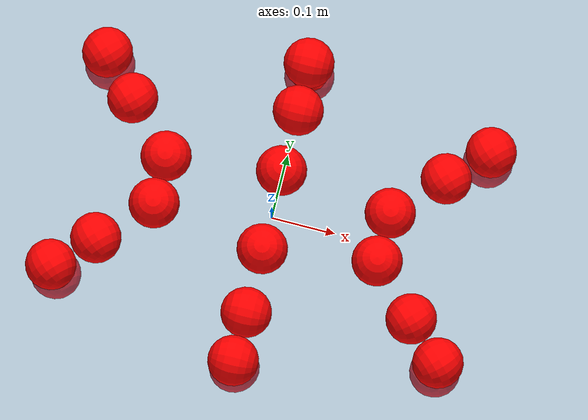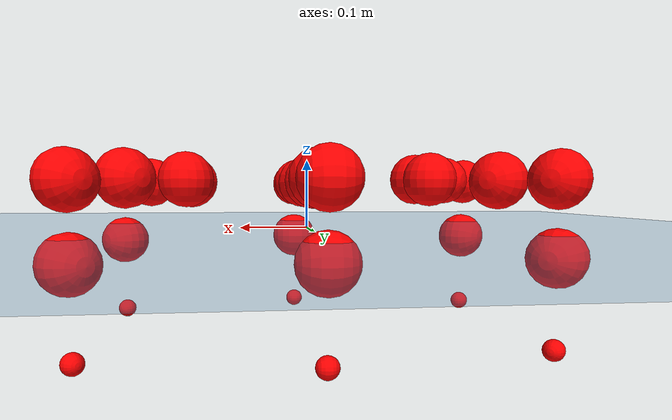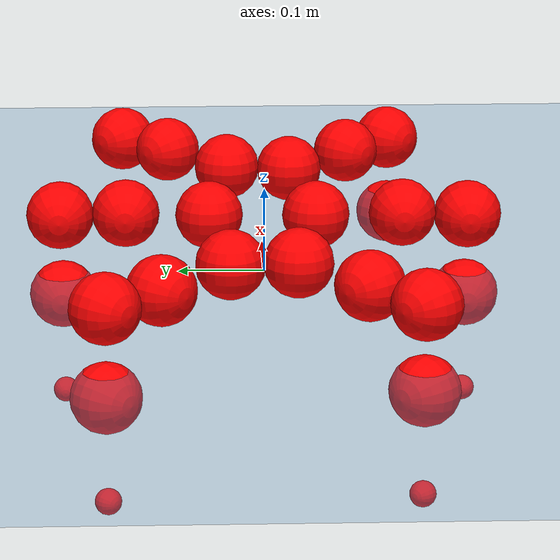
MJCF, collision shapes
<mujoco model="Golem">
  <compiler angle="radian" assetdir="assets" balanceinertia="true" inertiafromgeom="false"/>

  <option timestep="0.005" density="1.2" viscosity="2e-05"/>

  <size nkey="1"/>

  <visual>
    <quality shadowsize="8192"/>
    <map shadowclip="0.5"/>
  </visual>

  <default>
    <default class="/">
      <joint armature="0.01" damping="0.01" frictionloss="0.01"/>
      <geom contype="0" conaffinity="0" group="1" solref="-1000 -80"/>
      <site size="0.01 0.005 0.005" group="5"/>
      <general forcelimited="true" biastype="affine" gainprm="25" biasprm="0 -25 -0.5"/>
      <default class="visual">
        <geom type="mesh" group="2"/>
      </default>
      <default class="collision">
        <geom group="3"/>
      </default>
      <default class="foot">
        <geom size="0.01 0 0" condim="6" group="4" priority="1" solimp="0.015 1 0.01"/>
      </default>
      <default class="reward_collision_sphere">
        <geom group="5" rgba="1 0 0 1"/>
      </default>
    </default>
  </default>

  <asset>
    <texture type="skybox" colorspace="auto" name="//unnamed_texture_0" builtin="gradient" rgb1="0.95 0.95 0.95" rgb2="0.95 0.95 0.95" width="100" height="600"/>
    <texture type="2d" colorspace="auto" name="texplane" builtin="checker" rgb1="0.345 0.575 0.748" rgb2="0.345 0.575 0.748" markrgb="1 1 1" width="512" height="512"/>
    <material name="MatPlane" class="/" texture="texplane" texuniform="true" texrepeat="2 2" specular="0.9"/>
    <mesh name="body" class="/" file="body.stl" scale="0.001 0.001 0.001"/>
    <mesh name="coxa" class="/" file="coxa.stl" scale="0.001 0.001 0.001"/>
    <mesh name="femur" class="/" file="femur.stl" scale="0.001 0.001 0.001"/>
    <mesh name="tibia" class="/" file="tibia.stl" scale="0.001 0.001 0.001"/>
    <mesh name="tarsus" class="/" file="tarsus.stl" scale="0.001 0.001 0.001"/>
  </asset>

  <worldbody>
    <geom name="floor" class="/" size="100 100 0.125" type="plane" group="0" material="MatPlane"/>
    <light name="toplight_shadow" class="/" pos="0 0 5" dir="0.0990148 0.0990148 -0.990148" type="directional" ambient="0.04 0.04 0.04" diffuse="0.55 0.55 0.55" specular="0.12 0.12 0.12"/>
    <light name="toplight_fill" class="/" pos="0 0 5" dir="0.0990148 0.0990148 -0.990148" type="directional" castshadow="false" ambient="0.04 0.04 0.04" diffuse="0.3 0.3 0.3" specular="0.08 0.08 0.08"/>
    <body name="trunk" pos="-0.000419898 0.00251101 0.000971119" quat="1 -5.99548e-05 0.000166344 0.000123066">
      <inertial pos="0.000378117 0.000385197 -0.00519492" quat="1 0.000317901 -0.00023879 0.000419256" mass="3.60779" diaginertia="0.0179639 0.00212296 0.0140934"/>
      <joint name="//unnamed_joint_0" type="free"/>
      <geom name="//unnamed_geom_1" class="/" pos="0 0 0.068617" quat="1 0 0 0" type="mesh" rgba="0.9 0.9 0.9 1" mesh="body"/>
      <site name="imu" class="/" pos="0.147422 -0.00652881 0.108517" size="0.00973783"/>
      <camera name="track" class="/" pos="0 -1.45664 0" quat="0.707107 0.707107 0 0" mode="trackcom"/>
      <camera name="ego_camera" class="/" pos="0.145716 0 0.107214" quat="-0.5 -0.5 0.5 0.5"/>
      <body name="coxa_RR" pos="-0.199314 -0.058946 0.0716984" quat="0.383137 -4.7683e-05 -0.000972169 -0.923691">
        <inertial pos="0.000348776 -0.00263007 0.00310886" quat="0.999997 0.00222352 0.000924849 -0.000257073" mass="0.188756" diaginertia="0.0175914 0.00205251 0.01413"/>
        <joint name="coxa_joint_RR" class="/" pos="0 0 0" axis="-0.00362805 -0.00333717 -0.999988" range="-3.10032 3.14137" armature="0.00987668" damping="0.0108349" frictionloss="0.0100776"/>
        <geom name="//unnamed_geom_2" class="/" type="mesh" rgba="0.2 0.2 0.2 1" mesh="coxa"/>
        <geom name="//unnamed_geom_3" class="reward_collision_sphere" size="0.0389513" pos="-0.0336268 0 0"/>
        <body name="femur_RR" pos="0.0692219 0.000479495 -0.000758086" quat="0.500405 -0.500123 0.499125 0.500346">
          <inertial pos="-0.00212591 -0.000255198 0.000984026" quat="1 0.000111008 7.70778e-06 -0.000130549" mass="0.187513" diaginertia="0.0179947 0.00209846 0.0144686"/>
          <joint name="femur_joint_RR" class="/" pos="0 0 0" axis="-0.000770326 0.00199858 -0.999998" stiffness="0.00227531" range="-3.16701 3.15584" armature="0.00892614" damping="0.00449806" frictionloss="0.00971301"/>
          <geom name="//unnamed_geom_4" class="/" type="mesh" rgba="0.9 0.9 0.9 1" mesh="femur"/>
          <geom name="//unnamed_geom_5" class="reward_collision_sphere" size="0.0389513"/>
          <body name="tibia_RR" pos="0.00130608 -0.0790736 -4.00917e-05" quat="-0.000122781 1 -7.10419e-05 6.96091e-05">
            <inertial pos="0.000123222 0.000758964 -0.00107188" quat="0.999994 0.00128943 -0.00311419 0.000600153" mass="0.181359" diaginertia="0.0177182 0.00211498 0.0147332"/>
            <joint name="tibia_joint_RR" class="/" pos="0 0 0" axis="0.00795386 0.00365111 0.999962" range="-3.14366 3.08718" armature="0.010238" damping="0.0158455" frictionloss="0.00936126"/>
            <geom name="//unnamed_geom_6" class="/" type="mesh" rgba="0.2 0.2 0.2 1" mesh="tibia"/>
            <geom name="//unnamed_geom_7" class="reward_collision_sphere" size="0.0389513"/>
            <body name="tarsus_RR" pos="0.0984517 -0.00196645 -0.00100415" quat="1 7.42492e-05 -3.78856e-05 0.000161489">
              <inertial pos="0.0706798 0.00311611 -0.00232318" quat="0.500817 0.500331 0.499545 0.499306" mass="0.192375" diaginertia="0.0180316 0.00217294 0.01466"/>
              <joint name="tarsus_joint_RR" class="/" pos="0 0 0" axis="-0.000902657 -0.000901083 0.999999" range="-3.08563 3.12924" armature="0.00942894" damping="0.0433259" frictionloss="0.0099703"/>
              <geom name="//unnamed_geom_8" class="/" type="mesh" rgba="0.9 0.9 0.9 1" mesh="tarsus"/>
              <geom name="foot_1" class="foot" size="0.00955497" pos="0.12554 0 0" quat="0 -0.707107 0 0.707107"/>
              <geom name="//unnamed_geom_10" class="reward_collision_sphere" size="0.0389513"/>
              <geom name="//unnamed_geom_11" class="reward_collision_sphere" size="0.0146068" pos="0.120496 0 0"/>
              <site name="foot_1" class="foot" pos="0.12554 0 0" quat="0 -0.707107 0 0.707107" size="0.00973783"/>
            </body>
          </body>
        </body>
      </body>
      <body name="coxa_RM" pos="0.00050162 -0.0958912 0.0671523" quat="0.707055 -3.65672e-06 0.000175976 -0.707159">
        <inertial pos="0.000647239 0.000361477 -0.000595394" quat="0.999996 0.00240977 -0.000401204 -0.00130831" mass="0.179239" diaginertia="0.0174816 0.00200914 0.0140052"/>
        <joint name="coxa_joint_RM" class="/" pos="0 0 0" axis="-0.00107307 -0.00171087 -0.999998" range="-3.11835 3.15717" armature="0.00981242" damping="0.00682609" frictionloss="0.00845581"/>
        <geom name="//unnamed_geom_12" class="/" type="mesh" rgba="0.2 0.2 0.2 1" mesh="coxa"/>
        <geom name="//unnamed_geom_13" class="reward_collision_sphere" size="0.0389513" pos="-0.0336268 0 0"/>
        <body name="femur_RM" pos="0.0666309 0.000381493 0.00163779" quat="0.499659 -0.500195 0.499818 0.500327">
          <inertial pos="0.000198476 -0.00111118 0.00192456" quat="0.999986 -0.00204459 -0.00401256 -0.00277712" mass="0.184877" diaginertia="0.0171806 0.00207398 0.0142625"/>
          <joint name="femur_joint_RM" class="/" pos="0 0 0" axis="0.00479937 -0.00360462 -0.999982" stiffness="0.000395301" range="-3.16024 3.1288" armature="0.00987158" damping="0" frictionloss="0.00946931"/>
          <geom name="//unnamed_geom_14" class="/" type="mesh" rgba="0.9 0.9 0.9 1" mesh="femur"/>
          <geom name="//unnamed_geom_15" class="reward_collision_sphere" size="0.0389513"/>
          <body name="tibia_RM" pos="0.00228984 -0.0755515 -0.00111504" quat="-1.20962e-05 1 2.81897e-05 8.23313e-05">
            <inertial pos="-0.00267677 -0.00276057 -0.000626287" quat="0.999913 -0.00188226 -0.0121696 0.00480204" mass="0.185481" diaginertia="0.0176116 0.00205466 0.0137316"/>
            <joint name="tibia_joint_RM" class="/" pos="0 0 0" axis="0.00157438 -0.000163834 0.999999" range="-3.12968 3.14357" armature="0.00994471" damping="0.0217922" frictionloss="0.0101636"/>
            <geom name="//unnamed_geom_16" class="/" type="mesh" rgba="0.2 0.2 0.2 1" mesh="tibia"/>
            <geom name="//unnamed_geom_17" class="reward_collision_sphere" size="0.0389513"/>
            <body name="tarsus_RM" pos="0.0968894 -0.00120665 -0.000471697" quat="1 0.000289914 -4.24713e-05 -0.000311529">
              <inertial pos="0.0668975 0.000149851 0.00105892" quat="0.50047 0.500148 0.499878 0.499504" mass="0.18804" diaginertia="0.0179218 0.00210738 0.0143959"/>
              <joint name="tarsus_joint_RM" class="/" pos="0 0 0" axis="-0.00334314 -0.00152543 0.999993" range="-3.13909 3.12546" armature="0.0083843" damping="0.000172083" frictionloss="0.00957377"/>
              <geom name="//unnamed_geom_18" class="/" type="mesh" rgba="0.9 0.9 0.9 1" mesh="tarsus"/>
              <geom name="foot_2" class="foot" size="0.00911768" pos="0.12554 0 0" quat="0 -0.707107 0 0.707107"/>
              <geom name="//unnamed_geom_20" class="reward_collision_sphere" size="0.0389513"/>
              <geom name="//unnamed_geom_21" class="reward_collision_sphere" size="0.0146068" pos="0.120496 0 0"/>
              <site name="foot_2" class="foot" pos="0.12554 0 0" quat="0 -0.707107 0 0.707107" size="0.00973783"/>
            </body>
          </body>
        </body>
      </body>
      <body name="coxa_RF" pos="0.19752 -0.0615062 0.0678764" quat="0.923998 -0.000259344 -0.000154542 -0.382397">
        <inertial pos="0.00254395 0.000181129 0.000317337" quat="0.999996 0.00163877 5.93117e-05 -0.00228472" mass="0.183605" diaginertia="0.0182034 0.00201505 0.0136789"/>
        <joint name="coxa_joint_RF" class="/" pos="0 0 0" axis="0.00174342 0.00530228 -0.999984" range="-3.16038 3.14604" armature="0.009584" damping="0.00979192" frictionloss="0.00974809"/>
        <geom name="//unnamed_geom_22" class="/" type="mesh" rgba="0.2 0.2 0.2 1" mesh="coxa"/>
        <geom name="//unnamed_geom_23" class="reward_collision_sphere" size="0.0389513" pos="-0.0336268 0 0"/>
        <body name="femur_RF" pos="0.0684732 -0.00152508 -0.000267856" quat="0.500097 -0.499876 0.499902 0.500125">
          <inertial pos="-5.23036e-05 0.000846962 -0.0018885" quat="0.999988 0.00150029 -0.00369981 0.00270168" mass="0.182167" diaginertia="0.0178262 0.00213039 0.0140737"/>
          <joint name="femur_joint_RF" class="/" pos="0 0 0" axis="0.00134797 -0.000908319 -0.999999" range="-3.09204 3.14122" armature="0.010501" damping="0" frictionloss="0.00946594"/>
          <geom name="//unnamed_geom_24" class="/" type="mesh" rgba="0.9 0.9 0.9 1" mesh="femur"/>
          <geom name="//unnamed_geom_25" class="reward_collision_sphere" size="0.0389513"/>
          <body name="tibia_RF" pos="0.000598304 -0.0778828 -0.000154417" quat="5.06224e-05 1 1.10843e-05 -0.00019628">
            <inertial pos="-0.000715183 0.00164022 0.000738589" quat="0.999989 0.00131921 -0.00394235 0.00228228" mass="0.183604" diaginertia="0.0182079 0.00201917 0.0144749"/>
            <joint name="tibia_joint_RF" class="/" pos="0 0 0" axis="-0.00358312 -0.000886894 0.999993" range="-3.14264 3.15941" armature="0.00967046" damping="0.00815646" frictionloss="0.00870693"/>
            <geom name="//unnamed_geom_26" class="/" type="mesh" rgba="0.2 0.2 0.2 1" mesh="tibia"/>
            <geom name="//unnamed_geom_27" class="reward_collision_sphere" size="0.0389513"/>
            <body name="tarsus_RF" pos="0.0980776 0.00170473 0.00170931" quat="0.999999 -0.000965643 -0.00072067 0.000572729">
              <inertial pos="0.0659062 -0.00258172 0.0010308" quat="0.505859 0.501065 0.488956 0.503947" mass="0.179016" diaginertia="0.0181717 0.00197213 0.0141155"/>
              <joint name="tarsus_joint_RF" class="/" pos="0 0 0" axis="0.00918839 0.00411269 0.999949" range="-3.08779 3.14252" armature="0.0109258" damping="0.00343401" frictionloss="0.0096974"/>
              <geom name="//unnamed_geom_28" class="/" type="mesh" rgba="0.9 0.9 0.9 1" mesh="tarsus"/>
              <geom name="foot_3" class="foot" size="0.010076" pos="0.12554 0 0" quat="0 -0.707107 0 0.707107"/>
              <geom name="//unnamed_geom_30" class="reward_collision_sphere" size="0.0389513"/>
              <geom name="//unnamed_geom_31" class="reward_collision_sphere" size="0.0146068" pos="0.120496 0 0"/>
              <site name="foot_3" class="foot" pos="0.12554 0 0" quat="0 -0.707107 0 0.707107" size="0.00973783"/>
            </body>
          </body>
        </body>
      </body>
      <body name="coxa_LR" pos="-0.199935 0.0633282 0.0706834" quat="0.382549 0.000179102 -0.000132457 0.923935">
        <inertial pos="0.00108328 -0.00291972 -0.000281444" quat="0.999946 0.00507091 -0.00886246 -0.00204952" mass="0.177358" diaginertia="0.0169442 0.00204602 0.0137892"/>
        <joint name="coxa_joint_LR" class="/" pos="0 0 0" axis="-0.00517235 0.0018996 -0.999985" range="-3.13924 3.19084" armature="0.00849305" damping="0.00862625" frictionloss="0.0101084"/>
        <geom name="//unnamed_geom_32" class="/" type="mesh" rgba="0.2 0.2 0.2 1" mesh="coxa"/>
        <geom name="//unnamed_geom_33" class="reward_collision_sphere" size="0.0389513" pos="-0.0336268 0 0"/>
        <body name="femur_LR" pos="0.0703193 -0.00220713 -0.00255781" quat="0.500341 -0.500364 0.499284 0.50001">
          <inertial pos="-0.00074068 -0.000633959 -0.00130269" quat="0.999914 0.00439777 -0.0105508 0.00635616" mass="0.184356" diaginertia="0.017953 0.00206664 0.0147761"/>
          <joint name="femur_joint_LR" class="/" pos="0 0 0" axis="-0.0028988 -0.00119413 0.999995" range="-3.087 3.09708" armature="0.0101249" damping="0" frictionloss="0.00991962"/>
          <geom name="//unnamed_geom_34" class="/" type="mesh" rgba="0.9 0.9 0.9 1" mesh="femur"/>
          <geom name="//unnamed_geom_35" class="reward_collision_sphere" size="0.0389513"/>
          <body name="tibia_LR" pos="-0.000857332 -0.0805022 -0.00294575" quat="0.000207297 1 -7.63386e-06 -0.000167329">
            <inertial pos="0.000275593 -0.0023327 0.00197505" quat="0.999989 -0.00309886 -0.00234321 -0.00262114" mass="0.18569" diaginertia="0.0181166 0.00206318 0.0142379"/>
            <joint name="tibia_joint_LR" class="/" pos="0 0 0" axis="-0.000241465 -0.000633473 -1" range="-3.18224 3.15379" armature="0.0093432" damping="0" frictionloss="0.0102846"/>
            <geom name="//unnamed_geom_36" class="/" type="mesh" rgba="0.2 0.2 0.2 1" mesh="tibia"/>
            <geom name="//unnamed_geom_37" class="reward_collision_sphere" size="0.0389513"/>
            <body name="tarsus_LR" pos="0.100992 0.000433873 0.000232189" quat="0.999999 0.000786356 0.000603047 0.000614917">
              <inertial pos="0.0704277 0.000665428 -0.0002611" quat="0.496148 0.501448 0.497875 0.504487" mass="0.188138" diaginertia="0.0175955 0.00204937 0.0140751"/>
              <joint name="tarsus_joint_LR" class="/" pos="0 0 0" axis="-0.00224567 -0.00175926 -0.999996" range="-3.1873 3.14163" armature="0.00976141" damping="0.0269801" frictionloss="0.00852261"/>
              <geom name="//unnamed_geom_38" class="/" type="mesh" rgba="0.9 0.9 0.9 1" mesh="tarsus"/>
              <geom name="foot_4" class="foot" size="0.00960851" pos="0.12554 0 0" quat="0.707107 0 -0.707107 0"/>
              <geom name="//unnamed_geom_40" class="reward_collision_sphere" size="0.0389513"/>
              <geom name="//unnamed_geom_41" class="reward_collision_sphere" size="0.0146068" pos="0.120496 0 0"/>
              <site name="foot_4" class="foot" pos="0.12554 0 0" quat="0.707107 0 -0.707107 0" size="0.00973783"/>
            </body>
          </body>
        </body>
      </body>
      <body name="coxa_LM" pos="-0.000636515 0.0948274 0.0683619" quat="0.707036 -0.000118086 0.000102992 0.707177">
        <inertial pos="-0.00182374 0.000855522 -0.00127902" quat="0.999999 -3.97792e-05 0.000282833 0.00151078" mass="0.18368" diaginertia="0.0171601 0.00197885 0.014595"/>
        <joint name="coxa_joint_LM" class="/" pos="0 0 0" axis="0.00236353 -0.00449275 -0.999987" stiffness="2.3866e-05" range="-3.13988 3.13914" armature="0.0110227" damping="0.00119965" frictionloss="0.00911693"/>
        <geom name="//unnamed_geom_42" class="/" type="mesh" rgba="0.2 0.2 0.2 1" mesh="coxa"/>
        <geom name="//unnamed_geom_43" class="reward_collision_sphere" size="0.0389513" pos="-0.0336268 0 0"/>
        <body name="femur_LM" pos="0.0624763 -0.00208353 0.00233175" quat="0.499899 -0.500074 0.500236 0.499791">
          <inertial pos="0.0021365 8.26977e-05 0.00241894" quat="0.999999 0.000482249 -0.00113076 0.000669371" mass="0.184231" diaginertia="0.0176909 0.00205288 0.0142207"/>
          <joint name="femur_joint_LM" class="/" pos="0 0 0" axis="-0.00314624 -0.00470738 0.999984" range="-3.14869 3.09945" armature="0.00974405" damping="0.000753542" frictionloss="0.0104399"/>
          <geom name="//unnamed_geom_44" class="/" type="mesh" rgba="0.9 0.9 0.9 1" mesh="femur"/>
          <geom name="//unnamed_geom_45" class="reward_collision_sphere" size="0.0389513"/>
          <body name="tibia_LM" pos="0.000931237 -0.0755175 0.00205948" quat="-3.97349e-05 1 9.9423e-06 6.86109e-05">
            <inertial pos="-0.000729732 -0.00274849 0.00269309" quat="0.999914 -0.0123658 -0.00135536 0.00425035" mass="0.179687" diaginertia="0.01778 0.0020117 0.0138305"/>
            <joint name="tibia_joint_LM" class="/" pos="0 0 0" axis="-0.0090726 0.0001171 -0.999959" range="-3.14605 3.08869" armature="0.00942243" damping="0" frictionloss="0.00989834"/>
            <geom name="//unnamed_geom_46" class="/" type="mesh" rgba="0.2 0.2 0.2 1" mesh="tibia"/>
            <geom name="//unnamed_geom_47" class="reward_collision_sphere" size="0.0389513"/>
            <body name="tarsus_LM" pos="0.0971676 -0.00126743 0.00179515" quat="1 0.000204097 0.000193238 0.000204965">
              <inertial pos="0.0665606 0.000525102 -0.00230375" quat="0.488884 0.501301 0.503895 0.505747" mass="0.190347" diaginertia="0.0178667 0.00199932 0.0139166"/>
              <joint name="tarsus_joint_LM" class="/" pos="0 0 0" axis="-0.0104618 -0.00252309 -0.999942" range="-3.14669 3.08954" armature="0.00986973" damping="0" frictionloss="0.00976058"/>
              <geom name="//unnamed_geom_48" class="/" type="mesh" rgba="0.9 0.9 0.9 1" mesh="tarsus"/>
              <geom name="foot_5" class="foot" size="0.009822" pos="0.12554 0 0" quat="0.707107 0 -0.707107 0"/>
              <geom name="//unnamed_geom_50" class="reward_collision_sphere" size="0.0389513"/>
              <geom name="//unnamed_geom_51" class="reward_collision_sphere" size="0.0146068" pos="0.120496 0 0"/>
              <site name="foot_5" class="foot" pos="0.12554 0 0" quat="0.707107 0 -0.707107 0" size="0.00973783"/>
            </body>
          </body>
        </body>
      </body>
      <body name="coxa_LF" pos="0.199072 0.0616849 0.0704791" quat="0.923411 -0.000223755 -5.34942e-05 0.383812">
        <inertial pos="-0.000752636 0.00114473 -0.000266213" quat="0.999913 -0.00187542 -0.00606109 0.0115239" mass="0.188893" diaginertia="0.0174949 0.00209486 0.0135652"/>
        <joint name="coxa_joint_LF" class="/" pos="0 0 0" axis="-0.00162001 0.00134159 -0.999998" range="-3.13849 3.13799" armature="0.00983504" damping="0.00368607" frictionloss="0.00929399"/>
        <geom name="//unnamed_geom_52" class="/" type="mesh" rgba="0.2 0.2 0.2 1" mesh="coxa"/>
        <geom name="//unnamed_geom_53" class="reward_collision_sphere" size="0.0389513" pos="-0.0336268 0 0"/>
        <body name="femur_LF" pos="0.0667155 0.00124408 0.0004285" quat="0.499951 -0.500082 0.500015 0.499952">
          <inertial pos="0.00248397 0.000495201 0.00257747" quat="0.999994 -0.00186773 -0.00124407 -0.00256335" mass="0.181353" diaginertia="0.0170368 0.002045 0.0135938"/>
          <joint name="femur_joint_LF" class="/" pos="0 0 0" axis="-0.00189923 0.00181964 0.999997" range="-3.13209 3.19122" armature="0.0105805" damping="0" frictionloss="0.00998754"/>
          <geom name="//unnamed_geom_54" class="/" type="mesh" rgba="0.9 0.9 0.9 1" mesh="femur"/>
          <geom name="//unnamed_geom_55" class="reward_collision_sphere" size="0.0389513"/>
          <body name="tibia_LF" pos="0.00297777 -0.080064 -7.56761e-05" quat="-0.000699176 1 6.63812e-06 -0.000233096">
            <inertial pos="0.00063374 -0.000881955 4.10146e-05" quat="0.999999 0.0012763 -0.000922033 -4.24638e-05" mass="0.184885" diaginertia="0.0175528 0.00206108 0.0141715"/>
            <joint name="tibia_joint_LF" class="/" pos="0 0 0" axis="0.000517519 0.00853862 -0.999963" range="-3.13017 3.16944" armature="0.00848314" damping="0.00277087" frictionloss="0.00930874"/>
            <geom name="//unnamed_geom_56" class="/" type="mesh" rgba="0.2 0.2 0.2 1" mesh="tibia"/>
            <geom name="//unnamed_geom_57" class="reward_collision_sphere" size="0.0389513"/>
            <body name="tarsus_LF" pos="0.100213 0.00111026 -0.000987601" quat="1 7.4748e-05 -1.54813e-05 -8.53653e-05">
              <inertial pos="0.0656469 -0.000173979 3.74827e-05" quat="0.499506 0.500475 0.500669 0.499348" mass="0.181851" diaginertia="0.0178216 0.00205264 0.0142942"/>
              <joint name="tarsus_joint_LF" class="/" pos="0 0 0" axis="-0.00100177 -0.00276875 -0.999996" stiffness="0.0195128" range="-3.1898 3.19022" armature="0.00977531" damping="0" frictionloss="0.00953531"/>
              <geom name="//unnamed_geom_58" class="/" type="mesh" rgba="0.9 0.9 0.9 1" mesh="tarsus"/>
              <geom name="foot_6" class="foot" size="0.00970701" pos="0.12554 0 0" quat="0.707107 0 -0.707107 0"/>
              <geom name="//unnamed_geom_60" class="reward_collision_sphere" size="0.0389513"/>
              <geom name="//unnamed_geom_61" class="reward_collision_sphere" size="0.0146068" pos="0.120496 0 0"/>
              <site name="foot_6" class="foot" pos="0.12554 0 0" quat="0.707107 0 -0.707107 0" size="0.00973783"/>
            </body>
          </body>
        </body>
      </body>
    </body>
  </worldbody>

  <contact>
    <pair class="/" geom1="floor" geom2="foot_1" name="//unnamed_contact_0"/>
    <pair class="/" geom1="floor" geom2="foot_2" name="//unnamed_contact_1"/>
    <pair class="/" geom1="floor" geom2="foot_3" name="//unnamed_contact_2"/>
    <pair class="/" geom1="floor" geom2="foot_4" name="//unnamed_contact_3"/>
    <pair class="/" geom1="floor" geom2="foot_5" name="//unnamed_contact_4"/>
    <pair class="/" geom1="floor" geom2="foot_6" name="//unnamed_contact_5"/>
  </contact>

  <actuator>
    <general name="coxa_joint_RR" class="/" joint="coxa_joint_RR" forcerange="-7.05103 7.05103" gainprm="23.2056" biasprm="0 -23.2056 -0.526142"/>
    <general name="femur_joint_RR" class="/" joint="femur_joint_RR" forcerange="-7.00741 7.00741" gainprm="23.2056" biasprm="0 -23.2056 -0.526142"/>
    <general name="tibia_joint_RR" class="/" joint="tibia_joint_RR" forcerange="-6.40678 6.40678" gainprm="23.2056" biasprm="0 -23.2056 -0.526142"/>
    <general name="tarsus_joint_RR" class="/" joint="tarsus_joint_RR" forcerange="-6.77728 6.77728" gainprm="23.2056" biasprm="0 -23.2056 -0.526142"/>
    <general name="coxa_joint_RM" class="/" joint="coxa_joint_RM" forcerange="-7.13476 7.13476" gainprm="23.2056" biasprm="0 -23.2056 -0.526142"/>
    <general name="femur_joint_RM" class="/" joint="femur_joint_RM" forcerange="-7.24867 7.24867" gainprm="23.2056" biasprm="0 -23.2056 -0.526142"/>
    <general name="tibia_joint_RM" class="/" joint="tibia_joint_RM" forcerange="-6.40821 6.40821" gainprm="23.2056" biasprm="0 -23.2056 -0.526142"/>
    <general name="tarsus_joint_RM" class="/" joint="tarsus_joint_RM" forcerange="-7.35929 7.35929" gainprm="23.2056" biasprm="0 -23.2056 -0.526142"/>
    <general name="coxa_joint_RF" class="/" joint="coxa_joint_RF" forcerange="-6.98871 6.98871" gainprm="23.2056" biasprm="0 -23.2056 -0.526142"/>
    <general name="femur_joint_RF" class="/" joint="femur_joint_RF" forcerange="-7.81024 7.81024" gainprm="23.2056" biasprm="0 -23.2056 -0.526142"/>
    <general name="tibia_joint_RF" class="/" joint="tibia_joint_RF" forcerange="-7.21042 7.21042" gainprm="23.2056" biasprm="0 -23.2056 -0.526142"/>
    <general name="tarsus_joint_RF" class="/" joint="tarsus_joint_RF" forcerange="-7.81016 7.81016" gainprm="23.2056" biasprm="0 -23.2056 -0.526142"/>
    <general name="coxa_joint_LR" class="/" joint="coxa_joint_LR" forcerange="-6.50766 6.50766" gainprm="23.2056" biasprm="0 -23.2056 -0.526142"/>
    <general name="femur_joint_LR" class="/" joint="femur_joint_LR" forcerange="-6.97359 6.97359" gainprm="23.2056" biasprm="0 -23.2056 -0.526142"/>
    <general name="tibia_joint_LR" class="/" joint="tibia_joint_LR" forcerange="-7.3573 7.3573" gainprm="23.2056" biasprm="0 -23.2056 -0.526142"/>
    <general name="tarsus_joint_LR" class="/" joint="tarsus_joint_LR" forcerange="-7.1587 7.1587" gainprm="23.2056" biasprm="0 -23.2056 -0.526142"/>
    <general name="coxa_joint_LM" class="/" joint="coxa_joint_LM" forcerange="-7.16072 7.16072" gainprm="23.2056" biasprm="0 -23.2056 -0.526142"/>
    <general name="femur_joint_LM" class="/" joint="femur_joint_LM" forcerange="-7.04958 7.04958" gainprm="23.2056" biasprm="0 -23.2056 -0.526142"/>
    <general name="tibia_joint_LM" class="/" joint="tibia_joint_LM" forcerange="-6.41901 6.41901" gainprm="23.2056" biasprm="0 -23.2056 -0.526142"/>
    <general name="tarsus_joint_LM" class="/" joint="tarsus_joint_LM" forcerange="-6.67596 6.67596" gainprm="23.2056" biasprm="0 -23.2056 -0.526142"/>
    <general name="coxa_joint_LF" class="/" joint="coxa_joint_LF" forcerange="-6.9289 6.9289" gainprm="23.2056" biasprm="0 -23.2056 -0.526142"/>
    <general name="femur_joint_LF" class="/" joint="femur_joint_LF" forcerange="-6.47985 6.47985" gainprm="23.2056" biasprm="0 -23.2056 -0.526142"/>
    <general name="tibia_joint_LF" class="/" joint="tibia_joint_LF" forcerange="-7.20476 7.20476" gainprm="23.2056" biasprm="0 -23.2056 -0.526142"/>
    <general name="tarsus_joint_LF" class="/" joint="tarsus_joint_LF" forcerange="-7.07469 7.07469" gainprm="23.2056" biasprm="0 -23.2056 -0.526142"/>
  </actuator>

  <sensor>
    <gyro site="imu" name="imu_angular_velocity"/>
    <velocimeter site="imu" name="imu_linear_velocity"/>
    <framelinvel objtype="site" objname="foot_1" name="foot_1_global_linear_velocity"/>
    <framelinvel objtype="site" objname="foot_2" name="foot_2_global_linear_velocity"/>
    <framelinvel objtype="site" objname="foot_3" name="foot_3_global_linear_velocity"/>
    <framelinvel objtype="site" objname="foot_4" name="foot_4_global_linear_velocity"/>
    <framelinvel objtype="site" objname="foot_5" name="foot_5_global_linear_velocity"/>
    <framelinvel objtype="site" objname="foot_6" name="foot_6_global_linear_velocity"/>
  </sensor>

  <keyframe>
    <key name="home" qpos="0 0 0.1457 1 0 0 0 0 0 0 0 0 0 0 0 0 0 0 0 0 0 0 0 0 0 0 0 0 0 0 0"/>
  </keyframe>
</mujoco>
